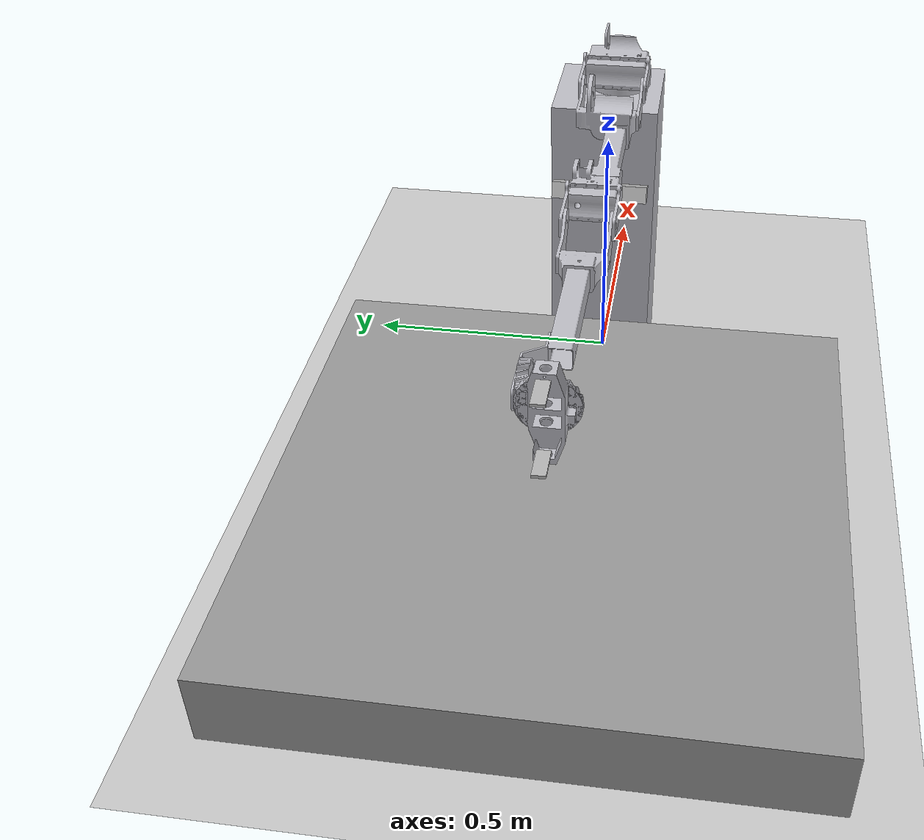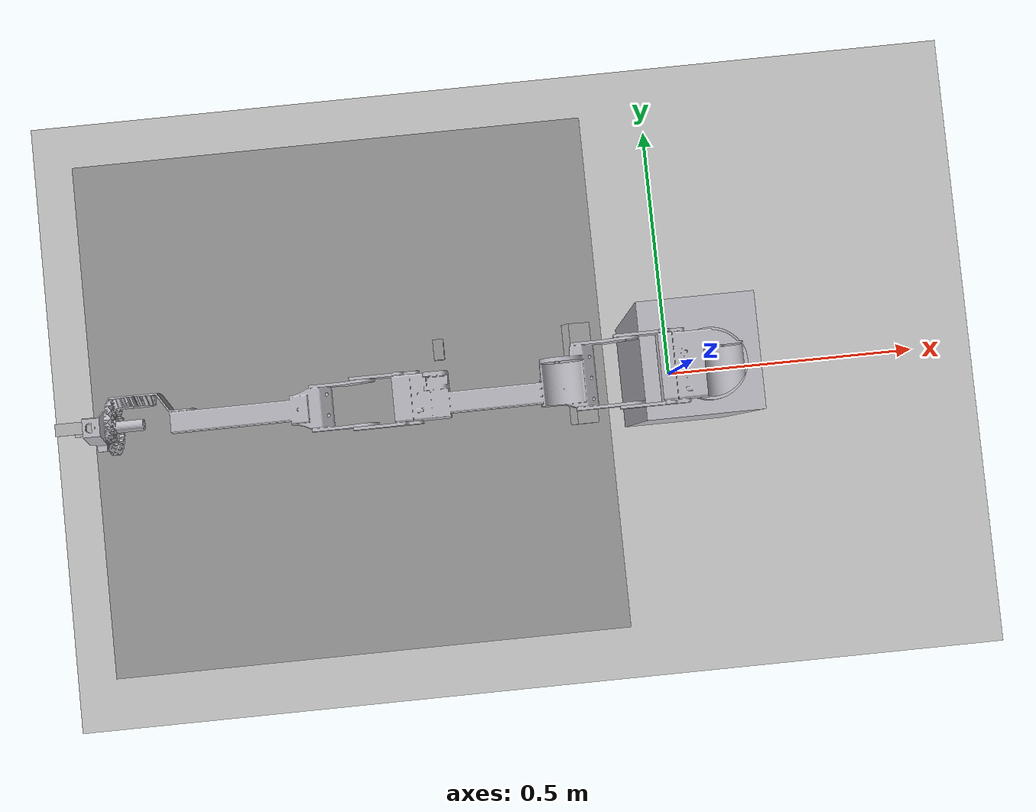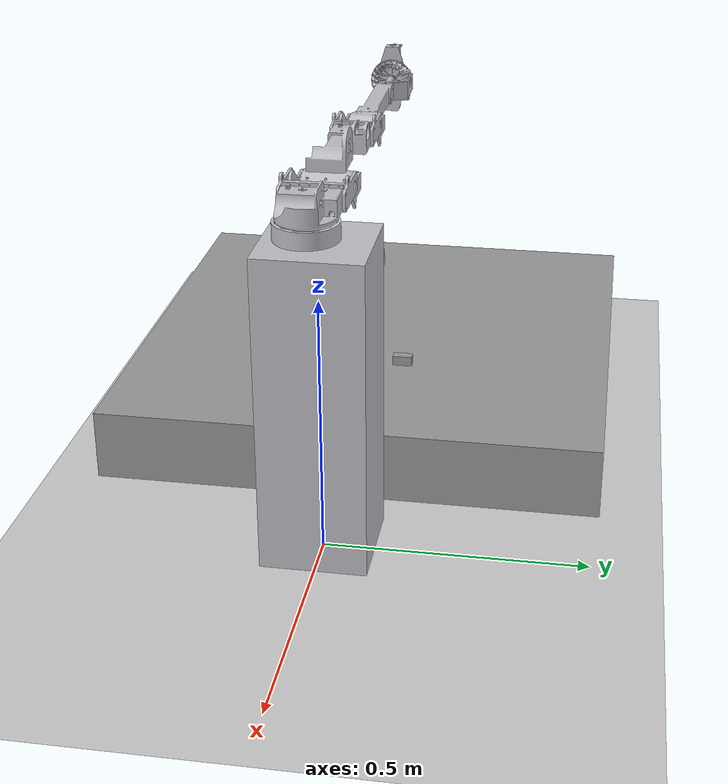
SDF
<sdf version="1.7">
 <world name="default">
  <light name="sun" type="directional">
   <pose>0 0 10 0 -0 0</pose>
   <diffuse>0.8 0.8 0.8 1</diffuse>
   <specular>0.2 0.2 0.2 1</specular>
   <attenuation>
    <range>1000</range>
    <constant>0.9</constant>
    <linear>0.01</linear>
    <quadratic>0.001</quadratic>
   </attenuation>
   <direction>-0.5 0.1 -0.9</direction>
   <spot><inner_angle>0</inner_angle><outer_angle>0</outer_angle><falloff>0</falloff></spot>
  </light>
  <model name="ground_plane">
   <static>1</static>
   <link name="link">
    <collision name="collision">
     <geometry><plane><normal>0 0 1</normal><size>100 100</size></plane></geometry>
     <surface><friction><ode><mu>100</mu><mu2>50</mu2></ode></friction></surface>
    </collision>
    <visual name="visual">
     <cast_shadows>0</cast_shadows>
     <geometry><plane><normal>0 0 1</normal><size>100 100</size></plane></geometry>
     <material>
      <script><uri>file://media/materials/scripts/gazebo.material</uri><name>Gazebo/Grey</name></script>
     </material>
    </visual>
   </link>
  </model>
  <gravity>0 0 -9.8</gravity>
  <magnetic_field>6e-06 2.3e-05 -4.2e-05</magnetic_field>
  <atmosphere type="adiabatic"/>
  <physics type="ode">
   <max_step_size>0.001</max_step_size>
   <real_time_factor>1</real_time_factor>
   <real_time_update_rate>1000</real_time_update_rate>
  </physics>
  <scene><ambient>0.4 0.4 0.4 1</ambient><background>0.7 0.7 0.7 1</background><shadows>1</shadows></scene>
  <audio><device>default</device></audio>
  <spherical_coordinates>
   <surface_model>EARTH_WGS84</surface_model>
   <latitude_deg>0</latitude_deg>
   <longitude_deg>0</longitude_deg>
   <elevation>0</elevation>
   <heading_deg>0</heading_deg>
  </spherical_coordinates>
  <model name="ARM">
   <joint name="world_joint" type="fixed">
    <pose relative_to="__model__">0 0 0.7 0 -0 0</pose>
    <parent>world</parent>
    <child>base_link</child>
   </joint>
   <link name="base_link">
    <pose relative_to="world_joint">0 0 0 0 -0 0</pose>
    <inertial>
     <pose>-0.011731 -0.059961 -0.007003 0 -0 0</pose>
     <mass>1.81752</mass>
     <inertia>
      <ixx>0.0110265</ixx>
      <ixy>0.00232538</ixy>
      <ixz>-0.00816562</ixz>
      <iyy>0.0199903</iyy>
      <iyz>0.00238377</iyz>
      <izz>0.0106214</izz>
     </inertia>
    </inertial>
    <collision name="base_link_collision">
     <pose>0 0 0 1.5708 -0 0</pose>
     <geometry>
      <mesh>
       <scale>0.001 0.001 0.001</scale>
       <uri>file:///home/ray/BUMRC_NewArm/src/install/arm_description/share/arm_description/meshes/base_link.stl</uri>
      </mesh>
     </geometry>
     <surface><friction><ode><mu>0.2</mu><mu2>0.2</mu2></ode></friction></surface>
    </collision>
    <collision name="base_link_collision_1">
     <pose>0 0 -0.39 0 -0 0</pose>
     <geometry><box><size>0.2 0.2 0.61</size></box></geometry>
     <surface><friction><ode><mu>0.2</mu><mu2>0.2</mu2></ode></friction></surface>
    </collision>
    <collision name="base_link_fixed_joint_lump__camera_link_collision_2">
     <pose>-0.2 -0.005 -0.2 -1.57159 1.17159 -3.14159</pose>
     <geometry><box><size>0.03 0.04 0.175</size></box></geometry>
    </collision>
    <visual name="base_link_visual">
     <pose>0 0 0 1.5708 -0 0</pose>
     <geometry>
      <mesh>
       <scale>0.001 0.001 0.001</scale>
       <uri>file:///home/ray/BUMRC_NewArm/src/install/arm_description/share/arm_description/meshes/base_link.stl</uri>
      </mesh>
     </geometry>
     <material>
      <script><name>Gazebo/Silver</name><uri>file://media/materials/scripts/gazebo.material</uri></script>
     </material>
    </visual>
    <visual name="base_link_visual_1">
     <pose>0 0 -0.39 0 -0 0</pose>
     <geometry><box><size>0.2 0.2 0.61</size></box></geometry>
     <material>
      <script><name>Gazebo/Silver</name><uri>file://media/materials/scripts/gazebo.material</uri></script>
     </material>
    </visual>
    <visual name="base_link_fixed_joint_lump__camera_link_visual_2">
     <pose>-0.2 -0.005 -0.2 -1.57159 1.17159 -3.14159</pose>
     <geometry><box><size>0.03 0.04 0.175</size></box></geometry>
     <geometry><mesh><uri>__default__</uri></mesh></geometry>
    </visual>
    <self_collide>1</self_collide>
    <sensor name="camera" type="depth">
     <visualize>1</visualize>
     <update_rate>10</update_rate>
     <camera>
      <horizontal_fov>1.5708</horizontal_fov>
      <image><format>R8G8B8</format><width>1280</width><height>720</height></image>
      <clip><near>0.03</near><far>20</far></clip>
     </camera>
     <plugin name="camera_controller" filename="libgazebo_ros_camera.so">
      <frame_name>camera_optical_link</frame_name>
     </plugin>
     <pose>-0.2 -0.005 -0.2 -1.57159 0.97159 -3.14159</pose>
    </sensor>
   </link>
   <joint name="revolute_1" type="revolute">
    <pose relative_to="base_link">0.011548 -0.044828 0.01686 0 -0 0</pose>
    <parent>base_link</parent>
    <child>J1In_v1_1</child>
    <axis>
     <xyz>0 0 1</xyz>
     <limit><lower>-1e+16</lower><upper>1e+16</upper></limit>
     <dynamics><spring_reference>0</spring_reference><spring_stiffness>0</spring_stiffness></dynamics>
    </axis>
   </joint>
   <link name="J1In_v1_1">
    <pose relative_to="revolute_1">0 0 0 0 -0 0</pose>
    <inertial>
     <pose>-0.038305 0.019099 -0.0009 0 -0 0</pose>
     <mass>3.71925</mass>
     <inertia>
      <ixx>0.005026</ixx>
      <ixy>0.000275</ixy>
      <ixz>0.000273</ixz>
      <iyy>0.010497</iyy>
      <iyz>0.000102</iyz>
      <izz>0.006726</izz>
     </inertia>
    </inertial>
    <collision name="J1In_v1_1_collision">
     <pose>-0.011548 0.044828 -0.01686 1.5708 -0 0</pose>
     <geometry>
      <mesh>
       <scale>0.001 0.001 0.001</scale>
       <uri>file:///home/ray/BUMRC_NewArm/src/install/arm_description/share/arm_description/meshes/J1In_v1_1.stl</uri>
      </mesh>
     </geometry>
     <surface><friction><ode><mu>0.2</mu><mu2>0.2</mu2></ode></friction></surface>
    </collision>
    <visual name="J1In_v1_1_visual">
     <pose>-0.011548 0.044828 -0.01686 1.5708 -0 0</pose>
     <geometry>
      <mesh>
       <scale>0.001 0.001 0.001</scale>
       <uri>file:///home/ray/BUMRC_NewArm/src/install/arm_description/share/arm_description/meshes/J1In_v1_1.stl</uri>
      </mesh>
     </geometry>
     <material>
      <script><name>Gazebo/Silver</name><uri>file://media/materials/scripts/gazebo.material</uri></script>
     </material>
    </visual>
    <self_collide>1</self_collide>
   </link>
   <joint name="revolute_8" type="revolute">
    <pose relative_to="J1In_v1_1">-0.136 0.02 -0.056 0 -0 0</pose>
    <parent>J1In_v1_1</parent>
    <child>Plate1_v1_1</child>
    <axis>
     <xyz>0 1 0</xyz>
     <limit><lower>-1e+16</lower><upper>1e+16</upper></limit>
     <dynamics><spring_reference>0</spring_reference><spring_stiffness>0</spring_stiffness></dynamics>
    </axis>
   </joint>
   <link name="Plate1_v1_1">
    <pose relative_to="revolute_8">0 0 0 0 -0 0</pose>
    <inertial>
     <pose>-0.216352 -0.017435 0.06115 0 -0 0</pose>
     <mass>4.81922</mass>
     <inertia>
      <ixx>0.005726</ixx>
      <ixy>-0.002855</ixy>
      <ixz>0.002383</ixz>
      <iyy>0.091947</iyy>
      <iyz>0.000429</iyz>
      <izz>0.089509</izz>
     </inertia>
    </inertial>
    <collision name="Plate1_v1_1_collision">
     <pose>0.124452 0.024828 0.03914 1.5708 -0 0</pose>
     <geometry>
      <mesh>
       <scale>0.001 0.001 0.001</scale>
       <uri>file:///home/ray/BUMRC_NewArm/src/install/arm_description/share/arm_description/meshes/Plate1_v1_1.stl</uri>
      </mesh>
     </geometry>
     <surface><friction><ode><mu>0.2</mu><mu2>0.2</mu2></ode></friction></surface>
    </collision>
    <visual name="Plate1_v1_1_visual">
     <pose>0.124452 0.024828 0.03914 1.5708 -0 0</pose>
     <geometry>
      <mesh>
       <scale>0.001 0.001 0.001</scale>
       <uri>file:///home/ray/BUMRC_NewArm/src/install/arm_description/share/arm_description/meshes/Plate1_v1_1.stl</uri>
      </mesh>
     </geometry>
     <material>
      <script><name>Gazebo/Silver</name><uri>file://media/materials/scripts/gazebo.material</uri></script>
     </material>
    </visual>
    <self_collide>1</self_collide>
   </link>
   <joint name="revolute_9" type="revolute">
    <pose relative_to="Plate1_v1_1">-0.439478 -0.023031 0.0253 0 -0 0</pose>
    <parent>Plate1_v1_1</parent>
    <child>J2Out_v1_1</child>
    <axis>
     <xyz>0 1 0</xyz>
     <limit><lower>-1e+16</lower><upper>1e+16</upper></limit>
     <dynamics><spring_reference>0</spring_reference><spring_stiffness>0</spring_stiffness></dynamics>
    </axis>
   </joint>
   <link name="J2Out_v1_1">
    <pose relative_to="revolute_9">0 0 0 0 -0 0</pose>
    <inertial>
     <pose>-0.116508 -0.021776 0.035639 0 -0 0</pose>
     <mass>1.49759</mass>
     <inertia>
      <ixx>0.00122</ixx>
      <ixy>-0.000229</ixy>
      <ixz>-0.001081</ixz>
      <iyy>0.014253</iyy>
      <iyz>-6e-06</iyz>
      <izz>0.013542</izz>
     </inertia>
    </inertial>
    <collision name="J2Out_v1_1_collision">
     <pose>0.56393 0.047859 0.01384 1.5708 -0 0</pose>
     <geometry>
      <mesh>
       <scale>0.001 0.001 0.001</scale>
       <uri>file:///home/ray/BUMRC_NewArm/src/install/arm_description/share/arm_description/meshes/J2Out_v1_1.stl</uri>
      </mesh>
     </geometry>
     <surface><friction><ode><mu>0.2</mu><mu2>0.2</mu2></ode></friction></surface>
    </collision>
    <visual name="J2Out_v1_1_visual">
     <pose>0.56393 0.047859 0.01384 1.5708 -0 0</pose>
     <geometry>
      <mesh>
       <scale>0.001 0.001 0.001</scale>
       <uri>file:///home/ray/BUMRC_NewArm/src/install/arm_description/share/arm_description/meshes/J2Out_v1_1.stl</uri>
      </mesh>
     </geometry>
     <material>
      <script><name>Gazebo/Silver</name><uri>file://media/materials/scripts/gazebo.material</uri></script>
     </material>
    </visual>
    <self_collide>1</self_collide>
   </link>
   <joint name="revolute_10" type="revolute">
    <pose relative_to="J2Out_v1_1">-0.384304 -0.023031 -0.0097 0 -0 0</pose>
    <parent>J2Out_v1_1</parent>
    <child>Small_Light_-_Spiral_Face_3.2M_20T_v1_1</child>
    <axis>
     <xyz>0 1 0</xyz>
     <limit><lower>-1e+16</lower><upper>1e+16</upper></limit>
     <dynamics>
      <damping>5</damping>
      <friction>1</friction>
      <spring_reference>0</spring_reference>
      <spring_stiffness>0</spring_stiffness>
     </dynamics>
    </axis>
   </joint>
   <link name="Small_Light_-_Spiral_Face_3.2M_20T_v1_1">
    <pose relative_to="revolute_10">0 0 0 0 -0 0</pose>
    <inertial>
     <pose>-0.020047 5e-06 0.028257 0 -0 0</pose>
     <mass>0.821747</mass>
     <inertia>
      <ixx>0.000918</ixx>
      <ixy>0</ixy>
      <ixz>0.000298</ixz>
      <iyy>0.000962</iyy>
      <iyz>0</iyz>
      <izz>0.000753</izz>
     </inertia>
    </inertial>
    <collision name="Small_Light_-_Spiral_Face_3.2M_20T_v1_1_collision">
     <pose>0.948234 0.07089 0.02354 1.5708 -0 0</pose>
     <geometry>
      <mesh>
       <scale>0.001 0.001 0.001</scale>
       <uri>file:///home/ray/BUMRC_NewArm/src/install/arm_description/share/arm_description/meshes/Small_Light_-_Spiral_Face_3.2M_20T_v1_1.stl</uri>
      </mesh>
     </geometry>
     <surface><friction><ode><mu>0.2</mu><mu2>0.2</mu2></ode></friction></surface>
    </collision>
    <visual name="Small_Light_-_Spiral_Face_3.2M_20T_v1_1_visual">
     <pose>0.948234 0.07089 0.02354 1.5708 -0 0</pose>
     <geometry>
      <mesh>
       <scale>0.001 0.001 0.001</scale>
       <uri>file:///home/ray/BUMRC_NewArm/src/install/arm_description/share/arm_description/meshes/Small_Light_-_Spiral_Face_3.2M_20T_v1_1.stl</uri>
      </mesh>
     </geometry>
     <material>
      <script><name>Gazebo/Silver</name><uri>file://media/materials/scripts/gazebo.material</uri></script>
     </material>
    </visual>
    <self_collide>1</self_collide>
   </link>
   <joint name="revolute_11" type="revolute">
    <pose relative_to="Small_Light_-_Spiral_Face_3.2M_20T_v1_1">-0.0424 0 0.0463 0 -0 0</pose>
    <parent>Small_Light_-_Spiral_Face_3.2M_20T_v1_1</parent>
    <child>Grabber_Base_v1_1</child>
    <axis>
     <xyz>1 0 0</xyz>
     <limit><lower>-1e+16</lower><upper>1e+16</upper></limit>
     <dynamics><spring_reference>0</spring_reference><spring_stiffness>0</spring_stiffness></dynamics>
    </axis>
   </joint>
   <link name="Grabber_Base_v1_1">
    <pose relative_to="revolute_11">0 0 0 0 -0 0</pose>
    <inertial>
     <pose>0.000651 2e-06 0.003321 0 -0 0</pose>
     <mass>0.984292</mass>
     <inertia>
      <ixx>0.00148</ixx>
      <ixy>0</ixy>
      <ixz>5.3e-05</ixz>
      <iyy>0.000585</iyy>
      <iyz>0</iyz>
      <izz>0.001318</izz>
     </inertia>
    </inertial>
    <collision name="Grabber_Base_v1_1_collision">
     <pose>0.990634 0.07089 -0.02276 1.5708 -0 0</pose>
     <geometry>
      <mesh>
       <scale>0.001 0.001 0.001</scale>
       <uri>file:///home/ray/BUMRC_NewArm/src/install/arm_description/share/arm_description/meshes/Grabber_Base_v1_1.stl</uri>
      </mesh>
     </geometry>
     <surface><friction><ode><mu>0.2</mu><mu2>0.2</mu2></ode></friction></surface>
    </collision>
    <visual name="Grabber_Base_v1_1_visual">
     <pose>0.990634 0.07089 -0.02276 1.5708 -0 0</pose>
     <geometry>
      <mesh>
       <scale>0.001 0.001 0.001</scale>
       <uri>file:///home/ray/BUMRC_NewArm/src/install/arm_description/share/arm_description/meshes/Grabber_Base_v1_1.stl</uri>
      </mesh>
     </geometry>
     <material>
      <script><name>Gazebo/Silver</name><uri>file://media/materials/scripts/gazebo.material</uri></script>
     </material>
    </visual>
    <self_collide>1</self_collide>
   </link>
   <joint name="gripper_open_joint" type="prismatic">
    <pose relative_to="Grabber_Base_v1_1">0 0 0.003 0 -0 0</pose>
    <parent>Grabber_Base_v1_1</parent>
    <child>left_prong</child>
    <axis>
     <xyz>0 0 -1</xyz>
     <limit><lower>0</lower><upper>0.05</upper><effort>5</effort><velocity>1</velocity></limit>
     <dynamics><spring_reference>0</spring_reference><spring_stiffness>0</spring_stiffness></dynamics>
    </axis>
   </joint>
   <link name="left_prong">
    <pose relative_to="gripper_open_joint">0 0 0 0 -0 0</pose>
    <inertial>
     <mass>0.05</mass>
     <inertia><ixx>1e-05</ixx><ixy>0</ixy><ixz>0</ixz><iyy>1e-05</iyy><iyz>0</iyz><izz>1e-05</izz></inertia>
    </inertial>
    <collision name="left_prong_collision">
     <pose>-0.05 0.05 -0.035 0 -0 0</pose>
     <geometry><box><size>0.05 0.02 0.005</size></box></geometry>
    </collision>
    <visual name="left_prong_visual">
     <pose>-0.05 0.05 -0.035 0 -0 0</pose>
     <geometry><box><size>0.05 0.02 0.005</size></box></geometry>
    </visual>
   </link>
   <joint name="gripper_right_joint" type="prismatic">
    <pose relative_to="Grabber_Base_v1_1">0 0 0.03 0 -0 0</pose>
    <parent>Grabber_Base_v1_1</parent>
    <child>right_prong</child>
    <axis>
     <xyz>0 0 1</xyz>
     <limit><lower>0</lower><upper>0.05</upper><effort>5</effort><velocity>1</velocity></limit>
     <dynamics><spring_reference>0</spring_reference><spring_stiffness>0</spring_stiffness></dynamics>
    </axis>
   </joint>
   <link name="right_prong">
    <pose relative_to="gripper_right_joint">0 0 0 0 -0 0</pose>
    <inertial>
     <mass>0.05</mass>
     <inertia><ixx>1e-05</ixx><ixy>0</ixy><ixz>0</ixz><iyy>1e-05</iyy><iyz>0</iyz><izz>1e-05</izz></inertia>
    </inertial>
    <collision name="right_prong_collision">
     <pose>-0.05 0.05 -0.18 0 -0 0</pose>
     <geometry><box><size>0.05 0.02 0.005</size></box></geometry>
    </collision>
    <visual name="right_prong_visual">
     <pose>-0.05 0.05 -0.18 0 -0 0</pose>
     <geometry><box><size>0.05 0.02 0.005</size></box></geometry>
    </visual>
   </link>
   <static>0</static>
   <plugin name="gazebo_ros2_control" filename="libgazebo_ros2_control.so">
    <parameters>/home/ray/BUMRC_NewArm/src/install/arm_description/share/arm_description/launch/controller.yaml</parameters>
   </plugin>
  </model>
  <model name="slab">
   <static>1</static>
   <link name="link_0">
    <inertial>
     <mass>0.14173</mass>
     <inertia>
      <ixx>0.0120481</ixx>
      <ixy>0</ixy>
      <ixz>0</ixz>
      <iyy>0.0120481</iyy>
      <iyz>0</iyz>
      <izz>0.0236217</izz>
     </inertia>
    </inertial>
    <visual name="visual">
     <geometry><box><size>1 1 0.141725</size></box></geometry>
     <material>
      <lighting>1</lighting>
      <script><uri>file://media/materials/scripts/gazebo.material</uri><name>Gazebo/Grey</name></script>
      <shader type="pixel"/>
     </material>
    </visual>
    <collision name="collision">
     <geometry><box><size>1 1 0.141725</size></box></geometry>
     <surface>
      <friction>
       <ode><mu>1</mu><mu2>1</mu2><fdir1>0 0 0</fdir1><slip1>0</slip1><slip2>0</slip2></ode>
       <torsional>
        <coefficient>1</coefficient>
        <patch_radius>0</patch_radius>
        <surface_radius>0</surface_radius>
        <use_patch_radius>1</use_patch_radius>
        <ode><slip>0</slip></ode>
       </torsional>
      </friction>
      <bounce><restitution_coefficient>0</restitution_coefficient><threshold>1e+06</threshold></bounce>
      <contact>
       <collide_without_contact>0</collide_without_contact>
       <collide_without_contact_bitmask>1</collide_without_contact_bitmask>
       <collide_bitmask>1</collide_bitmask>
       <ode>
        <soft_cfm>0</soft_cfm>
        <soft_erp>0.2</soft_erp>
        <kp>1e+13</kp>
        <kd>1</kd>
        <max_vel>0.01</max_vel>
        <min_depth>0</min_depth>
       </ode>
       <bullet>
        <split_impulse>1</split_impulse>
        <split_impulse_penetration_threshold>-0.01</split_impulse_penetration_threshold>
        <soft_cfm>0</soft_cfm>
        <soft_erp>0.2</soft_erp>
        <kp>1e+13</kp>
        <kd>1</kd>
       </bullet>
      </contact>
     </surface>
    </collision>
   </link>
   <static>0</static>
   <pose>-0.638786 0.012418 0.094136 0 -0 0</pose>
  </model>
  <model name="USB">
   <link name="link_0">
    <inertial>
     <mass>1</mass>
     <inertia>
      <ixx>0.166667</ixx>
      <ixy>0</ixy>
      <ixz>0</ixz>
      <iyy>0.166667</iyy>
      <iyz>0</iyz>
      <izz>0.166667</izz>
     </inertia>
    </inertial>
    <visual name="visual">
     <geometry><box><size>0.02 0.04 0.02</size></box></geometry>
     <material>
      <lighting>1</lighting>
      <script><uri>file://media/materials/scripts/gazebo.material</uri><name>Gazebo/Grey</name></script>
      <shader type="pixel"><normal_map>__default__</normal_map></shader>
      <ambient>0.3 0.3 0.3 1</ambient>
      <diffuse>0.7 0.7 0.7 1</diffuse>
      <specular>0.01 0.01 0.01 1</specular>
      <emissive>0 0 0 1</emissive>
     </material>
    </visual>
    <collision name="collision">
     <geometry><box><size>0.02 0.04 0.02</size></box></geometry>
     <surface>
      <friction>
       <ode><mu>1</mu><mu2>1</mu2><fdir1>0 0 0</fdir1><slip1>0</slip1><slip2>0</slip2></ode>
       <torsional>
        <coefficient>1</coefficient>
        <patch_radius>0</patch_radius>
        <surface_radius>0</surface_radius>
        <use_patch_radius>1</use_patch_radius>
        <ode><slip>0</slip></ode>
       </torsional>
      </friction>
      <bounce><restitution_coefficient>0</restitution_coefficient><threshold>1e+06</threshold></bounce>
      <contact>
       <collide_without_contact>0</collide_without_contact>
       <collide_without_contact_bitmask>1</collide_without_contact_bitmask>
       <collide_bitmask>1</collide_bitmask>
       <ode>
        <soft_cfm>0</soft_cfm>
        <soft_erp>0.2</soft_erp>
        <kp>1e+13</kp>
        <kd>1</kd>
        <max_vel>0.01</max_vel>
        <min_depth>0</min_depth>
       </ode>
       <bullet>
        <split_impulse>1</split_impulse>
        <split_impulse_penetration_threshold>-0.01</split_impulse_penetration_threshold>
        <soft_cfm>0</soft_cfm>
        <soft_erp>0.2</soft_erp>
        <kp>1e+13</kp>
        <kd>1</kd>
       </bullet>
      </contact>
     </surface>
    </collision>
   </link>
   <static>0</static>
   <pose>-0.456586 0.083856 0.174999 9e-06 -4.2e-05 8e-06</pose>
  </model>
 </world>
</sdf>
